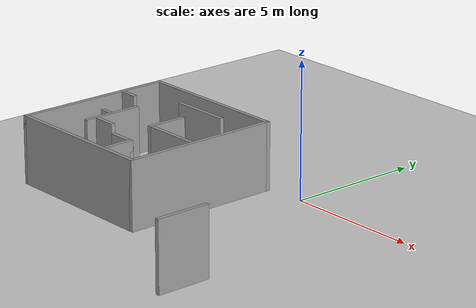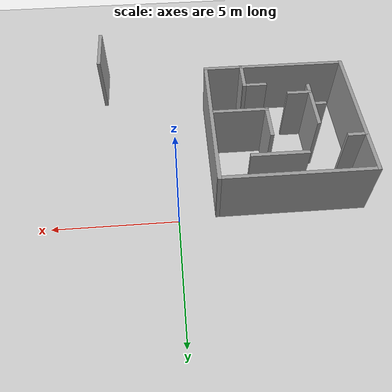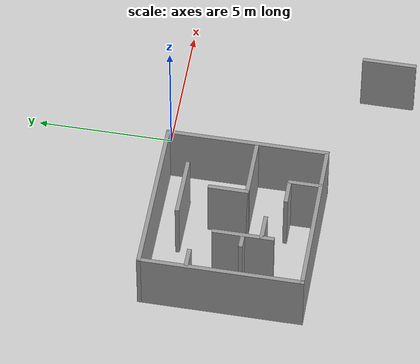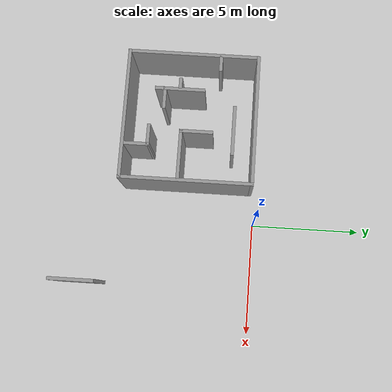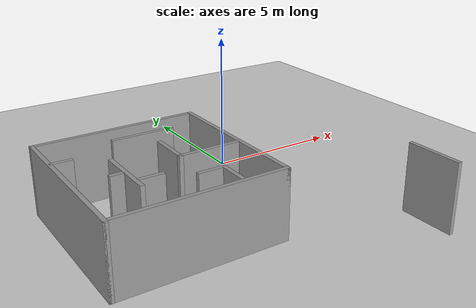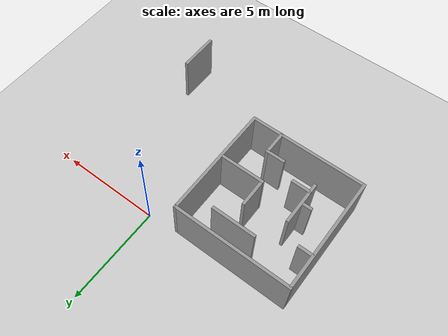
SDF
<sdf version="1.7">
 <world name="default">
  <model name="ground_plane">
   <static>1</static>
   <link name="link">
    <collision name="collision">
     <geometry><plane><normal>0 0 1</normal><size>100 100</size></plane></geometry>
     <surface>
      <contact><collide_bitmask>65535</collide_bitmask></contact>
      <friction><ode><mu>100</mu><mu2>50</mu2></ode></friction>
     </surface>
    </collision>
    <visual name="visual">
     <cast_shadows>0</cast_shadows>
     <geometry><plane><normal>0 0 1</normal><size>100 100</size></plane></geometry>
     <material>
      <script><uri>file://media/materials/scripts/gazebo.material</uri><name>Gazebo/Grey</name></script>
     </material>
    </visual>
   </link>
  </model>
  <light name="sun" type="directional">
   <pose>0 0 10 0 -0 0</pose>
   <diffuse>0.8 0.8 0.8 1</diffuse>
   <specular>0.2 0.2 0.2 1</specular>
   <attenuation>
    <range>1000</range>
    <constant>0.9</constant>
    <linear>0.01</linear>
    <quadratic>0.001</quadratic>
   </attenuation>
   <direction>-0.5 0.1 -0.9</direction>
   <spot><inner_angle>0</inner_angle><outer_angle>0</outer_angle><falloff>0</falloff></spot>
  </light>
  <scene><shadows>0</shadows><ambient>0.4 0.4 0.4 1</ambient><background>0.7 0.7 0.7 1</background></scene>
  <physics type="ode">
   <real_time_update_rate>1000</real_time_update_rate>
   <max_step_size>0.001</max_step_size>
   <real_time_factor>1</real_time_factor>
   <ode>
    <solver>
     <type>quick</type>
     <iters>150</iters>
     <precon_iters>0</precon_iters>
     <sor>1.4</sor>
     <use_dynamic_moi_rescaling>1</use_dynamic_moi_rescaling>
    </solver>
    <constraints>
     <cfm>1e-05</cfm>
     <erp>0.2</erp>
     <contact_max_correcting_vel>2000</contact_max_correcting_vel>
     <contact_surface_layer>0.01</contact_surface_layer>
    </constraints>
   </ode>
  </physics>
  <gravity>0 0 -9.8</gravity>
  <magnetic_field>6e-06 2.3e-05 -4.2e-05</magnetic_field>
  <atmosphere type="adiabatic"/>
  <audio><device>default</device></audio>
  <spherical_coordinates>
   <surface_model>EARTH_WGS84</surface_model>
   <latitude_deg>0</latitude_deg>
   <longitude_deg>0</longitude_deg>
   <elevation>0</elevation>
   <heading_deg>0</heading_deg>
  </spherical_coordinates>
  <model name="turtlebot_map_second">
   <pose>-2.14695 -3.33099 0 0 -0 0</pose>
   <link name="Wall_31">
    <collision name="Wall_31_Collision">
     <geometry><box><size>2 0.15 2.5</size></box></geometry>
     <pose>0 0 1.25 0 -0 0</pose>
    </collision>
    <visual name="Wall_31_Visual">
     <pose>0 0 1.25 0 -0 0</pose>
     <geometry><box><size>2 0.15 2.5</size></box></geometry>
     <material>
      <script><uri>file://media/materials/scripts/gazebo.material</uri><name>Gazebo/Grey</name></script>
      <ambient>1 1 1 1</ambient>
     </material>
     <meta><layer>0</layer></meta>
    </visual>
    <pose>5.21818 -4.3575 0 0 -0 1.5708</pose>
   </link>
   <link name="Wall_36">
    <collision name="Wall_36_Collision">
     <geometry><box><size>6 0.15 2.5</size></box></geometry>
     <pose>0 0 1.25 0 -0 0</pose>
    </collision>
    <visual name="Wall_36_Visual">
     <pose>0 0 1.25 0 -0 0</pose>
     <geometry><box><size>6 0.15 2.5</size></box></geometry>
     <material>
      <script><uri>file://media/materials/scripts/gazebo.material</uri><name>Gazebo/Grey</name></script>
      <ambient>1 1 1 1</ambient>
     </material>
     <meta><layer>0</layer></meta>
    </visual>
    <pose>-5.21818 0.21009 0 0 -0 -1.5708</pose>
   </link>
   <link name="Wall_37">
    <collision name="Wall_37_Collision">
     <geometry><box><size>6 0.15 2.5</size></box></geometry>
     <pose>0 0 1.25 0 -0 0</pose>
    </collision>
    <visual name="Wall_37_Visual">
     <pose>0 0 1.25 0 -0 0</pose>
     <geometry><box><size>6 0.15 2.5</size></box></geometry>
     <material>
      <script><uri>file://media/materials/scripts/gazebo.material</uri><name>Gazebo/Grey</name></script>
      <ambient>1 1 1 1</ambient>
     </material>
     <meta><layer>0</layer></meta>
    </visual>
    <pose>-2.29318 -2.71491 0 0 -0 0</pose>
   </link>
   <link name="Wall_38">
    <collision name="Wall_38_Collision">
     <geometry><box><size>6 0.15 2.5</size></box></geometry>
     <pose>0 0 1.25 0 -0 0</pose>
    </collision>
    <visual name="Wall_38_Visual">
     <pose>0 0 1.25 0 -0 0</pose>
     <geometry><box><size>6 0.15 2.5</size></box></geometry>
     <material>
      <script><uri>file://media/materials/scripts/gazebo.material</uri><name>Gazebo/Grey</name></script>
      <ambient>1 1 1 1</ambient>
     </material>
     <meta><layer>0</layer></meta>
    </visual>
    <pose>0.631817 0.21009 0 0 -0 1.5708</pose>
   </link>
   <link name="Wall_39">
    <collision name="Wall_39_Collision">
     <geometry><box><size>6 0.15 2.5</size></box></geometry>
     <pose>0 0 1.25 0 -0 0</pose>
    </collision>
    <visual name="Wall_39_Visual">
     <pose>0 0 1.25 0 -0 0</pose>
     <geometry><box><size>6 0.15 2.5</size></box></geometry>
     <material>
      <script><uri>file://media/materials/scripts/gazebo.material</uri><name>Gazebo/Grey</name></script>
      <ambient>1 1 1 1</ambient>
     </material>
     <meta><layer>0</layer></meta>
    </visual>
    <pose>-2.29318 3.13509 0 0 -0 3.14159</pose>
   </link>
   <link name="Wall_41">
    <collision name="Wall_41_Collision">
     <geometry><box><size>1.25 0.15 2.5</size></box></geometry>
     <pose>0 0 1.25 0 -0 0</pose>
    </collision>
    <visual name="Wall_41_Visual">
     <pose>0 0 1.25 0 -0 0</pose>
     <geometry><box><size>1.25 0.15 2.5</size></box></geometry>
     <material>
      <script><uri>file://media/materials/scripts/gazebo.material</uri><name>Gazebo/Grey</name></script>
      <ambient>1 1 1 1</ambient>
     </material>
     <meta><layer>0</layer></meta>
    </visual>
    <pose>-0.893608 -2.13391 0 0 -0 1.5708</pose>
   </link>
   <link name="Wall_43">
    <collision name="Wall_43_Collision">
     <geometry><box><size>2.25 0.15 2.5</size></box></geometry>
     <pose>0 0 1.25 0 -0 0</pose>
    </collision>
    <visual name="Wall_43_Visual">
     <pose>0 0 1.25 0 -0 0</pose>
     <geometry><box><size>2.25 0.15 2.5</size></box></geometry>
     <material>
      <script><uri>file://media/materials/scripts/gazebo.material</uri><name>Gazebo/Grey</name></script>
      <ambient>1 1 1 1</ambient>
     </material>
     <meta><layer>0</layer></meta>
    </visual>
    <pose>-0.541758 -0.14471 0 0 -0 3.14159</pose>
   </link>
   <link name="Wall_45">
    <collision name="Wall_45_Collision">
     <geometry><box><size>2.25 0.15 2.5</size></box></geometry>
     <pose>0 0 1.25 0 -0 0</pose>
    </collision>
    <visual name="Wall_45_Visual">
     <pose>0 0 1.25 0 -0 0</pose>
     <geometry><box><size>2.25 0.15 2.5</size></box></geometry>
     <material>
      <script><uri>file://media/materials/scripts/gazebo.material</uri><name>Gazebo/Grey</name></script>
      <ambient>1 1 1 1</ambient>
     </material>
     <meta><layer>0</layer></meta>
    </visual>
    <pose>-3.52538 -0.32186 0 0 -0 -1.5708</pose>
   </link>
   <link name="Wall_47">
    <collision name="Wall_47_Collision">
     <geometry><box><size>1 0.15 2.5</size></box></geometry>
     <pose>0 0 1.25 0 -0 0</pose>
    </collision>
    <visual name="Wall_47_Visual">
     <pose>0 0 1.25 0 -0 0</pose>
     <geometry><box><size>1 0.15 2.5</size></box></geometry>
     <material>
      <script><uri>file://media/materials/scripts/gazebo.material</uri><name>Gazebo/Grey</name></script>
      <ambient>1 1 1 1</ambient>
     </material>
     <meta><layer>0</layer></meta>
    </visual>
    <pose>-3.08716 -0.99111 0 0 -0 0</pose>
   </link>
   <link name="Wall_49">
    <collision name="Wall_49_Collision">
     <geometry><box><size>1.5 0.15 2.5</size></box></geometry>
     <pose>0 0 1.25 0 -0 0</pose>
    </collision>
    <visual name="Wall_49_Visual">
     <pose>0 0 1.25 0 -0 0</pose>
     <geometry><box><size>1.5 0.15 2.5</size></box></geometry>
     <material>
      <script><uri>file://media/materials/scripts/gazebo.material</uri><name>Gazebo/Grey</name></script>
      <ambient>1 1 1 1</ambient>
     </material>
     <meta><layer>0</layer></meta>
    </visual>
    <pose>-1.59176 0.53029 0 0 -0 1.5708</pose>
   </link>
   <link name="Wall_53">
    <collision name="Wall_53_Collision">
     <geometry><box><size>2.25 0.15 2.5</size></box></geometry>
     <pose>0 0 1.25 0 -0 0</pose>
    </collision>
    <visual name="Wall_53_Visual">
     <pose>0 0 1.25 0 -0 0</pose>
     <geometry><box><size>2.25 0.15 2.5</size></box></geometry>
     <material>
      <script><uri>file://media/materials/scripts/gazebo.material</uri><name>Gazebo/Grey</name></script>
      <ambient>1 1 1 1</ambient>
     </material>
     <meta><layer>0</layer></meta>
    </visual>
    <pose>-1.74801 2.18289 0 0 -0 0</pose>
   </link>
   <link name="Wall_55">
    <collision name="Wall_55_Collision">
     <geometry><box><size>0.75 0.15 2.5</size></box></geometry>
     <pose>0 0 1.25 0 -0 0</pose>
    </collision>
    <visual name="Wall_55_Visual">
     <pose>0 0 1.25 0 -0 0</pose>
     <geometry><box><size>0.75 0.15 2.5</size></box></geometry>
     <material>
      <script><uri>file://media/materials/scripts/gazebo.material</uri><name>Gazebo/Grey</name></script>
      <ambient>1 1 1 1</ambient>
     </material>
     <meta><layer>0</layer></meta>
    </visual>
    <pose>-4.85206 1.44229 0 0 -0 0</pose>
   </link>
   <link name="Wall_57">
    <collision name="Wall_57_Collision">
     <geometry><box><size>0.5 0.15 2.5</size></box></geometry>
     <pose>0 0 1.25 0 -0 0</pose>
    </collision>
    <visual name="Wall_57_Visual">
     <pose>0 0 1.25 0 -0 0</pose>
     <geometry><box><size>0.5 0.15 2.5</size></box></geometry>
     <material>
      <script><uri>file://media/materials/scripts/gazebo.material</uri><name>Gazebo/Grey</name></script>
      <ambient>1 1 1 1</ambient>
     </material>
     <meta><layer>0</layer></meta>
    </visual>
    <pose>-3.80618 -0.316635 0 0 -0 3.14159</pose>
   </link>
   <link name="Wall_61">
    <collision name="Wall_61_Collision">
     <geometry><box><size>1 0.15 2.5</size></box></geometry>
     <pose>0 0 1.25 0 -0 0</pose>
    </collision>
    <visual name="Wall_61_Visual">
     <pose>0 0 1.25 0 -0 0</pose>
     <geometry><box><size>1 0.15 2.5</size></box></geometry>
     <material>
      <script><uri>file://media/materials/scripts/gazebo.material</uri><name>Gazebo/Grey</name></script>
      <ambient>1 1 1 1</ambient>
     </material>
     <meta><layer>0</layer></meta>
    </visual>
    <pose>-1.31861 -1.58391 0 0 -0 3.14159</pose>
   </link>
   <static>1</static>
  </model>
 </world>
</sdf>
